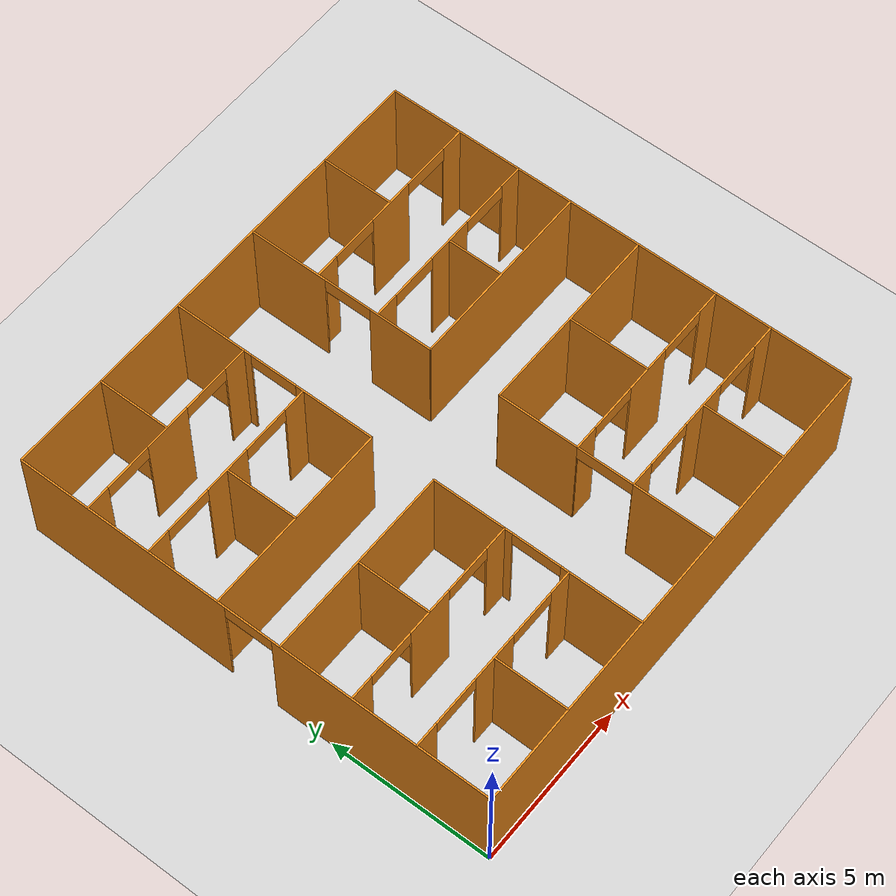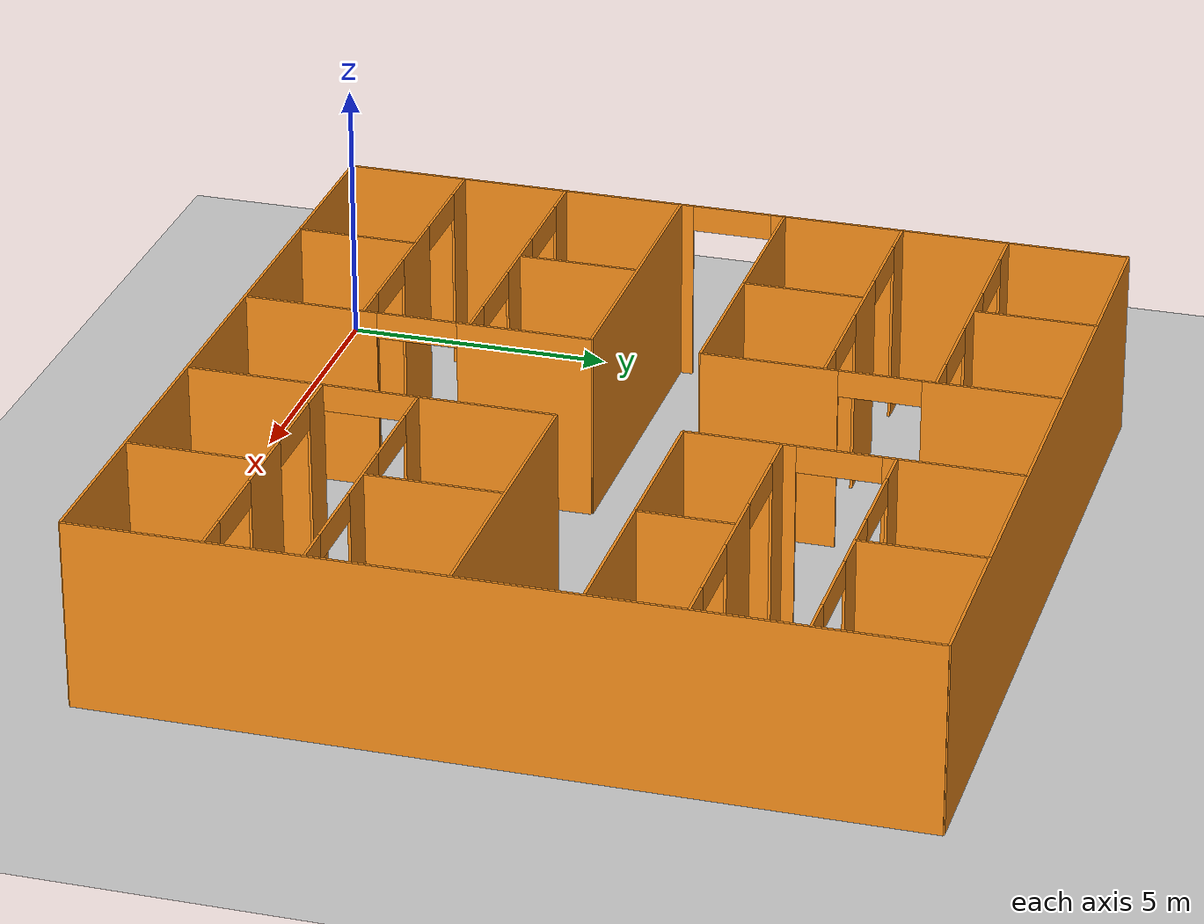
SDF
<sdf version="1.6">
 <world name="default">
  <model name="box_70">
   <pose>1.5 10.75 3.25 0 0 -0.0</pose>
   <link name="link">
    <inertial>
     <mass>1</mass>
     <inertia><ixx>0</ixx><ixy>0</ixy><ixz>0</ixz><iyy>0</iyy><iyz>0</iyz><izz>0</izz></inertia>
    </inertial>
    <collision name="collision"><geometry><box><size>1.5 0.05 0.5</size></box></geometry></collision>
    <visual name="visual">
     <geometry><box><size>1.5 0.05 0.5</size></box></geometry>
     <material>
      <script><name>Gazebo/Orange</name><uri>file://media/materials/scripts/gazebo.material</uri></script>
     </material>
    </visual>
   </link>
   <static>1</static>
  </model>
  <model name="box_69">
   <pose>4.5 10.75 3.25 0 0 -0.0</pose>
   <link name="link">
    <inertial>
     <mass>1</mass>
     <inertia><ixx>0</ixx><ixy>0</ixy><ixz>0</ixz><iyy>0</iyy><iyz>0</iyz><izz>0</izz></inertia>
    </inertial>
    <collision name="collision"><geometry><box><size>1.5 0.05 0.5</size></box></geometry></collision>
    <visual name="visual">
     <geometry><box><size>1.5 0.05 0.5</size></box></geometry>
     <material>
      <script><name>Gazebo/Orange</name><uri>file://media/materials/scripts/gazebo.material</uri></script>
     </material>
    </visual>
   </link>
   <static>1</static>
  </model>
  <model name="box_68">
   <pose>10.5 10.75 3.25 0 0 -3.141592653589793</pose>
   <link name="link">
    <inertial>
     <mass>1</mass>
     <inertia><ixx>0</ixx><ixy>0</ixy><ixz>0</ixz><iyy>0</iyy><iyz>0</iyz><izz>0</izz></inertia>
    </inertial>
    <collision name="collision"><geometry><box><size>1.5 0.05 0.5</size></box></geometry></collision>
    <visual name="visual">
     <geometry><box><size>1.5 0.05 0.5</size></box></geometry>
     <material>
      <script><name>Gazebo/Orange</name><uri>file://media/materials/scripts/gazebo.material</uri></script>
     </material>
    </visual>
   </link>
   <static>1</static>
  </model>
  <model name="box_67">
   <pose>13.5 10.75 3.25 0 0 -3.141592653589793</pose>
   <link name="link">
    <inertial>
     <mass>1</mass>
     <inertia><ixx>0</ixx><ixy>0</ixy><ixz>0</ixz><iyy>0</iyy><iyz>0</iyz><izz>0</izz></inertia>
    </inertial>
    <collision name="collision"><geometry><box><size>1.5 0.05 0.5</size></box></geometry></collision>
    <visual name="visual">
     <geometry><box><size>1.5 0.05 0.5</size></box></geometry>
     <material>
      <script><name>Gazebo/Orange</name><uri>file://media/materials/scripts/gazebo.material</uri></script>
     </material>
    </visual>
   </link>
   <static>1</static>
  </model>
  <model name="box_66">
   <pose>13.5 12.75 3.25 0 0 -3.141592653589793</pose>
   <link name="link">
    <inertial>
     <mass>1</mass>
     <inertia><ixx>0</ixx><ixy>0</ixy><ixz>0</ixz><iyy>0</iyy><iyz>0</iyz><izz>0</izz></inertia>
    </inertial>
    <collision name="collision"><geometry><box><size>1.5 0.05 0.5</size></box></geometry></collision>
    <visual name="visual">
     <geometry><box><size>1.5 0.05 0.5</size></box></geometry>
     <material>
      <script><name>Gazebo/Orange</name><uri>file://media/materials/scripts/gazebo.material</uri></script>
     </material>
    </visual>
   </link>
   <static>1</static>
  </model>
  <model name="box_65">
   <pose>10.5 12.75 3.25 0 0 -3.141592653589793</pose>
   <link name="link">
    <inertial>
     <mass>1</mass>
     <inertia><ixx>0</ixx><ixy>0</ixy><ixz>0</ixz><iyy>0</iyy><iyz>0</iyz><izz>0</izz></inertia>
    </inertial>
    <collision name="collision"><geometry><box><size>1.5 0.05 0.5</size></box></geometry></collision>
    <visual name="visual">
     <geometry><box><size>1.5 0.05 0.5</size></box></geometry>
     <material>
      <script><name>Gazebo/Orange</name><uri>file://media/materials/scripts/gazebo.material</uri></script>
     </material>
    </visual>
   </link>
   <static>1</static>
  </model>
  <model name="box_64">
   <pose>9.0 11.75 3.25 0 0 1.5707963267948966</pose>
   <link name="link">
    <inertial>
     <mass>1</mass>
     <inertia><ixx>0</ixx><ixy>0</ixy><ixz>0</ixz><iyy>0</iyy><iyz>0</iyz><izz>0</izz></inertia>
    </inertial>
    <collision name="collision"><geometry><box><size>1.5 0.05 0.5</size></box></geometry></collision>
    <visual name="visual">
     <geometry><box><size>1.5 0.05 0.5</size></box></geometry>
     <material>
      <script><name>Gazebo/Orange</name><uri>file://media/materials/scripts/gazebo.material</uri></script>
     </material>
    </visual>
   </link>
   <static>1</static>
  </model>
  <model name="box_63">
   <pose>6.0 11.75 3.25 0 0 -1.5707963267948966</pose>
   <link name="link">
    <inertial>
     <mass>1</mass>
     <inertia><ixx>0</ixx><ixy>0</ixy><ixz>0</ixz><iyy>0</iyy><iyz>0</iyz><izz>0</izz></inertia>
    </inertial>
    <collision name="collision"><geometry><box><size>1.5 0.05 0.5</size></box></geometry></collision>
    <visual name="visual">
     <geometry><box><size>1.5 0.05 0.5</size></box></geometry>
     <material>
      <script><name>Gazebo/Orange</name><uri>file://media/materials/scripts/gazebo.material</uri></script>
     </material>
    </visual>
   </link>
   <static>1</static>
  </model>
  <model name="box_62">
   <pose>4.5 12.75 3.25 0 0 -3.141592653589793</pose>
   <link name="link">
    <inertial>
     <mass>1</mass>
     <inertia><ixx>0</ixx><ixy>0</ixy><ixz>0</ixz><iyy>0</iyy><iyz>0</iyz><izz>0</izz></inertia>
    </inertial>
    <collision name="collision"><geometry><box><size>1.5 0.05 0.5</size></box></geometry></collision>
    <visual name="visual">
     <geometry><box><size>1.5 0.05 0.5</size></box></geometry>
     <material>
      <script><name>Gazebo/Orange</name><uri>file://media/materials/scripts/gazebo.material</uri></script>
     </material>
    </visual>
   </link>
   <static>1</static>
  </model>
  <model name="box_61">
   <pose>1.5 12.75 3.25 0 0 -3.141592653589793</pose>
   <link name="link">
    <inertial>
     <mass>1</mass>
     <inertia><ixx>0</ixx><ixy>0</ixy><ixz>0</ixz><iyy>0</iyy><iyz>0</iyz><izz>0</izz></inertia>
    </inertial>
    <collision name="collision"><geometry><box><size>1.5 0.05 0.5</size></box></geometry></collision>
    <visual name="visual">
     <geometry><box><size>1.5 0.05 0.5</size></box></geometry>
     <material>
      <script><name>Gazebo/Orange</name><uri>file://media/materials/scripts/gazebo.material</uri></script>
     </material>
    </visual>
   </link>
   <static>1</static>
  </model>
  <model name="box_60">
   <pose>4.5 2.25 3.25 0 0 -3.141592653589793</pose>
   <link name="link">
    <inertial>
     <mass>1</mass>
     <inertia><ixx>0</ixx><ixy>0</ixy><ixz>0</ixz><iyy>0</iyy><iyz>0</iyz><izz>0</izz></inertia>
    </inertial>
    <collision name="collision"><geometry><box><size>1.5 0.05 0.5</size></box></geometry></collision>
    <visual name="visual">
     <geometry><box><size>1.5 0.05 0.5</size></box></geometry>
     <material>
      <script><name>Gazebo/Orange</name><uri>file://media/materials/scripts/gazebo.material</uri></script>
     </material>
    </visual>
   </link>
   <static>1</static>
  </model>
  <model name="box_59">
   <pose>1.5 2.25 3.25 0 0 -3.141592653589793</pose>
   <link name="link">
    <inertial>
     <mass>1</mass>
     <inertia><ixx>0</ixx><ixy>0</ixy><ixz>0</ixz><iyy>0</iyy><iyz>0</iyz><izz>0</izz></inertia>
    </inertial>
    <collision name="collision"><geometry><box><size>1.5 0.05 0.5</size></box></geometry></collision>
    <visual name="visual">
     <geometry><box><size>1.5 0.05 0.5</size></box></geometry>
     <material>
      <script><name>Gazebo/Orange</name><uri>file://media/materials/scripts/gazebo.material</uri></script>
     </material>
    </visual>
   </link>
   <static>1</static>
  </model>
  <model name="box_58">
   <pose>0.0 7.5 3.25 0 0 -1.5707963267948966</pose>
   <link name="link">
    <inertial>
     <mass>1</mass>
     <inertia><ixx>0</ixx><ixy>0</ixy><ixz>0</ixz><iyy>0</iyy><iyz>0</iyz><izz>0</izz></inertia>
    </inertial>
    <collision name="collision"><geometry><box><size>1.5 0.05 0.5</size></box></geometry></collision>
    <visual name="visual">
     <geometry><box><size>1.5 0.05 0.5</size></box></geometry>
     <material>
      <script><name>Gazebo/Orange</name><uri>file://media/materials/scripts/gazebo.material</uri></script>
     </material>
    </visual>
   </link>
   <static>1</static>
  </model>
  <model name="box_57">
   <pose>6.0 3.25 3.25 0 0 -1.5707963267948966</pose>
   <link name="link">
    <inertial>
     <mass>1</mass>
     <inertia><ixx>0</ixx><ixy>0</ixy><ixz>0</ixz><iyy>0</iyy><iyz>0</iyz><izz>0</izz></inertia>
    </inertial>
    <collision name="collision"><geometry><box><size>1.5 0.05 0.5</size></box></geometry></collision>
    <visual name="visual">
     <geometry><box><size>1.5 0.05 0.5</size></box></geometry>
     <material>
      <script><name>Gazebo/Orange</name><uri>file://media/materials/scripts/gazebo.material</uri></script>
     </material>
    </visual>
   </link>
   <static>1</static>
  </model>
  <model name="box_56">
   <pose>10.5 4.25 3.25 0 0 -3.141592653589793</pose>
   <link name="link">
    <inertial>
     <mass>1</mass>
     <inertia><ixx>0</ixx><ixy>0</ixy><ixz>0</ixz><iyy>0</iyy><iyz>0</iyz><izz>0</izz></inertia>
    </inertial>
    <collision name="collision"><geometry><box><size>1.5 0.05 0.5</size></box></geometry></collision>
    <visual name="visual">
     <geometry><box><size>1.5 0.05 0.5</size></box></geometry>
     <material>
      <script><name>Gazebo/Orange</name><uri>file://media/materials/scripts/gazebo.material</uri></script>
     </material>
    </visual>
   </link>
   <static>1</static>
  </model>
  <model name="box_55">
   <pose>10.5 2.5 3.25 0 0 -3.141592653589793</pose>
   <link name="link">
    <inertial>
     <mass>1</mass>
     <inertia><ixx>0</ixx><ixy>0</ixy><ixz>0</ixz><iyy>0</iyy><iyz>0</iyz><izz>0</izz></inertia>
    </inertial>
    <collision name="collision"><geometry><box><size>1.5 0.05 0.5</size></box></geometry></collision>
    <visual name="visual">
     <geometry><box><size>1.5 0.05 0.5</size></box></geometry>
     <material>
      <script><name>Gazebo/Orange</name><uri>file://media/materials/scripts/gazebo.material</uri></script>
     </material>
    </visual>
   </link>
   <static>1</static>
  </model>
  <model name="box_54">
   <pose>1.5 4.25 3.25 0 0 -0.0</pose>
   <link name="link">
    <inertial>
     <mass>1</mass>
     <inertia><ixx>0</ixx><ixy>0</ixy><ixz>0</ixz><iyy>0</iyy><iyz>0</iyz><izz>0</izz></inertia>
    </inertial>
    <collision name="collision"><geometry><box><size>1.5 0.05 0.5</size></box></geometry></collision>
    <visual name="visual">
     <geometry><box><size>1.5 0.05 0.5</size></box></geometry>
     <material>
      <script><name>Gazebo/Orange</name><uri>file://media/materials/scripts/gazebo.material</uri></script>
     </material>
    </visual>
   </link>
   <static>1</static>
  </model>
  <model name="box_53">
   <pose>4.5 4.25 3.25 0 0 -0.0</pose>
   <link name="link">
    <inertial>
     <mass>1</mass>
     <inertia><ixx>0</ixx><ixy>0</ixy><ixz>0</ixz><iyy>0</iyy><iyz>0</iyz><izz>0</izz></inertia>
    </inertial>
    <collision name="collision"><geometry><box><size>1.5 0.05 0.5</size></box></geometry></collision>
    <visual name="visual">
     <geometry><box><size>1.5 0.05 0.5</size></box></geometry>
     <material>
      <script><name>Gazebo/Orange</name><uri>file://media/materials/scripts/gazebo.material</uri></script>
     </material>
    </visual>
   </link>
   <static>1</static>
  </model>
  <model name="box_52">
   <pose>9.0 3.375 3.25 0 0 1.5707963267948966</pose>
   <link name="link">
    <inertial>
     <mass>1</mass>
     <inertia><ixx>0</ixx><ixy>0</ixy><ixz>0</ixz><iyy>0</iyy><iyz>0</iyz><izz>0</izz></inertia>
    </inertial>
    <collision name="collision"><geometry><box><size>1.75 0.05 0.5</size></box></geometry></collision>
    <visual name="visual">
     <geometry><box><size>1.75 0.05 0.5</size></box></geometry>
     <material>
      <script><name>Gazebo/Orange</name><uri>file://media/materials/scripts/gazebo.material</uri></script>
     </material>
    </visual>
   </link>
   <static>1</static>
  </model>
  <model name="box_51">
   <pose>13.5 2.5 3.25 0 0 -3.141592653589793</pose>
   <link name="link">
    <inertial>
     <mass>1</mass>
     <inertia><ixx>0</ixx><ixy>0</ixy><ixz>0</ixz><iyy>0</iyy><iyz>0</iyz><izz>0</izz></inertia>
    </inertial>
    <collision name="collision"><geometry><box><size>1.5 0.05 0.5</size></box></geometry></collision>
    <visual name="visual">
     <geometry><box><size>1.5 0.05 0.5</size></box></geometry>
     <material>
      <script><name>Gazebo/Orange</name><uri>file://media/materials/scripts/gazebo.material</uri></script>
     </material>
    </visual>
   </link>
   <static>1</static>
  </model>
  <model name="box_50">
   <pose>13.5 4.25 3.25 0 0 -3.141592653589793</pose>
   <link name="link">
    <inertial>
     <mass>1</mass>
     <inertia><ixx>0</ixx><ixy>0</ixy><ixz>0</ixz><iyy>0</iyy><iyz>0</iyz><izz>0</izz></inertia>
    </inertial>
    <collision name="collision"><geometry><box><size>1.5 0.05 0.5</size></box></geometry></collision>
    <visual name="visual">
     <geometry><box><size>1.5 0.05 0.5</size></box></geometry>
     <material>
      <script><name>Gazebo/Orange</name><uri>file://media/materials/scripts/gazebo.material</uri></script>
     </material>
    </visual>
   </link>
   <static>1</static>
  </model>
  <model name="box_49">
   <pose>9.0 13.75 1.75 0 0 -1.5707963267948966</pose>
   <link name="link">
    <inertial>
     <mass>1</mass>
     <inertia><ixx>0</ixx><ixy>0</ixy><ixz>0</ixz><iyy>0</iyy><iyz>0</iyz><izz>0</izz></inertia>
    </inertial>
    <collision name="collision"><geometry><box><size>2.5 0.05 3.5</size></box></geometry></collision>
    <visual name="visual">
     <geometry><box><size>2.5 0.05 3.5</size></box></geometry>
     <material>
      <script><name>Gazebo/Orange</name><uri>file://media/materials/scripts/gazebo.material</uri></script>
     </material>
    </visual>
   </link>
   <static>1</static>
  </model>
  <model name="box_48">
   <pose>9.0 10.0 1.75 0 0 -1.5707963267948966</pose>
   <link name="link">
    <inertial>
     <mass>1</mass>
     <inertia><ixx>0</ixx><ixy>0</ixy><ixz>0</ixz><iyy>0</iyy><iyz>0</iyz><izz>0</izz></inertia>
    </inertial>
    <collision name="collision"><geometry><box><size>2.0 0.05 3.5</size></box></geometry></collision>
    <visual name="visual">
     <geometry><box><size>2.0 0.05 3.5</size></box></geometry>
     <material>
      <script><name>Gazebo/Orange</name><uri>file://media/materials/scripts/gazebo.material</uri></script>
     </material>
    </visual>
   </link>
   <static>1</static>
  </model>
  <model name="box_47">
   <pose>12.0 4.25 1.75 0 0 -3.141592653589793</pose>
   <link name="link">
    <inertial>
     <mass>1</mass>
     <inertia><ixx>0</ixx><ixy>0</ixy><ixz>0</ixz><iyy>0</iyy><iyz>0</iyz><izz>0</izz></inertia>
    </inertial>
    <collision name="collision"><geometry><box><size>1.5 0.05 3.5</size></box></geometry></collision>
    <visual name="visual">
     <geometry><box><size>1.5 0.05 3.5</size></box></geometry>
     <material>
      <script><name>Gazebo/Orange</name><uri>file://media/materials/scripts/gazebo.material</uri></script>
     </material>
    </visual>
   </link>
   <static>1</static>
  </model>
  <model name="box_46">
   <pose>12.0 10.75 1.75 0 0 -3.141592653589793</pose>
   <link name="link">
    <inertial>
     <mass>1</mass>
     <inertia><ixx>0</ixx><ixy>0</ixy><ixz>0</ixz><iyy>0</iyy><iyz>0</iyz><izz>0</izz></inertia>
    </inertial>
    <collision name="collision"><geometry><box><size>1.5 0.05 3.5</size></box></geometry></collision>
    <visual name="visual">
     <geometry><box><size>1.5 0.05 3.5</size></box></geometry>
     <material>
      <script><name>Gazebo/Orange</name><uri>file://media/materials/scripts/gazebo.material</uri></script>
     </material>
    </visual>
   </link>
   <static>1</static>
  </model>
  <model name="box_45">
   <pose>5.625 10.75 1.75 0 0 -3.141592653589793</pose>
   <link name="link">
    <inertial>
     <mass>1</mass>
     <inertia><ixx>0</ixx><ixy>0</ixy><ixz>0</ixz><iyy>0</iyy><iyz>0</iyz><izz>0</izz></inertia>
    </inertial>
    <collision name="collision"><geometry><box><size>0.75 0.05 3.5</size></box></geometry></collision>
    <visual name="visual">
     <geometry><box><size>0.75 0.05 3.5</size></box></geometry>
     <material>
      <script><name>Gazebo/Orange</name><uri>file://media/materials/scripts/gazebo.material</uri></script>
     </material>
    </visual>
   </link>
   <static>1</static>
  </model>
  <model name="box_44">
   <pose>3.0 10.75 1.75 0 0 -3.141592653589793</pose>
   <link name="link">
    <inertial>
     <mass>1</mass>
     <inertia><ixx>0</ixx><ixy>0</ixy><ixz>0</ixz><iyy>0</iyy><iyz>0</iyz><izz>0</izz></inertia>
    </inertial>
    <collision name="collision"><geometry><box><size>1.5 0.05 3.5</size></box></geometry></collision>
    <visual name="visual">
     <geometry><box><size>1.5 0.05 3.5</size></box></geometry>
     <material>
      <script><name>Gazebo/Orange</name><uri>file://media/materials/scripts/gazebo.material</uri></script>
     </material>
    </visual>
   </link>
   <static>1</static>
  </model>
  <model name="box_43">
   <pose>0.375 10.75 1.75 0 0 -3.141592653589793</pose>
   <link name="link">
    <inertial>
     <mass>1</mass>
     <inertia><ixx>0</ixx><ixy>0</ixy><ixz>0</ixz><iyy>0</iyy><iyz>0</iyz><izz>0</izz></inertia>
    </inertial>
    <collision name="collision"><geometry><box><size>0.75 0.05 3.5</size></box></geometry></collision>
    <visual name="visual">
     <geometry><box><size>0.75 0.05 3.5</size></box></geometry>
     <material>
      <script><name>Gazebo/Orange</name><uri>file://media/materials/scripts/gazebo.material</uri></script>
     </material>
    </visual>
   </link>
   <static>1</static>
  </model>
  <model name="box_42">
   <pose>12.0 9.875 1.75 0 0 1.5707963267948966</pose>
   <link name="link">
    <inertial>
     <mass>1</mass>
     <inertia><ixx>0</ixx><ixy>0</ixy><ixz>0</ixz><iyy>0</iyy><iyz>0</iyz><izz>0</izz></inertia>
    </inertial>
    <collision name="collision"><geometry><box><size>1.75 0.05 3.5</size></box></geometry></collision>
    <visual name="visual">
     <geometry><box><size>1.75 0.05 3.5</size></box></geometry>
     <material>
      <script><name>Gazebo/Orange</name><uri>file://media/materials/scripts/gazebo.material</uri></script>
     </material>
    </visual>
   </link>
   <static>1</static>
  </model>
  <model name="box_41">
   <pose>12.0 13.875 1.75 0 0 -1.5707963267948966</pose>
   <link name="link">
    <inertial>
     <mass>1</mass>
     <inertia><ixx>0</ixx><ixy>0</ixy><ixz>0</ixz><iyy>0</iyy><iyz>0</iyz><izz>0</izz></inertia>
    </inertial>
    <collision name="collision"><geometry><box><size>2.25 0.05 3.5</size></box></geometry></collision>
    <visual name="visual">
     <geometry><box><size>2.25 0.05 3.5</size></box></geometry>
     <material>
      <script><name>Gazebo/Orange</name><uri>file://media/materials/scripts/gazebo.material</uri></script>
     </material>
    </visual>
   </link>
   <static>1</static>
  </model>
  <model name="box_40">
   <pose>9.375 12.75 1.75 0 0 -0.0</pose>
   <link name="link">
    <inertial>
     <mass>1</mass>
     <inertia><ixx>0</ixx><ixy>0</ixy><ixz>0</ixz><iyy>0</iyy><iyz>0</iyz><izz>0</izz></inertia>
    </inertial>
    <collision name="collision"><geometry><box><size>0.75 0.05 3.5</size></box></geometry></collision>
    <visual name="visual">
     <geometry><box><size>0.75 0.05 3.5</size></box></geometry>
     <material>
      <script><name>Gazebo/Orange</name><uri>file://media/materials/scripts/gazebo.material</uri></script>
     </material>
    </visual>
   </link>
   <static>1</static>
  </model>
  <model name="box_39">
   <pose>9.375 10.75 1.75 0 0 -0.0</pose>
   <link name="link">
    <inertial>
     <mass>1</mass>
     <inertia><ixx>0</ixx><ixy>0</ixy><ixz>0</ixz><iyy>0</iyy><iyz>0</iyz><izz>0</izz></inertia>
    </inertial>
    <collision name="collision"><geometry><box><size>0.75 0.05 3.5</size></box></geometry></collision>
    <visual name="visual">
     <geometry><box><size>0.75 0.05 3.5</size></box></geometry>
     <material>
      <script><name>Gazebo/Orange</name><uri>file://media/materials/scripts/gazebo.material</uri></script>
     </material>
    </visual>
   </link>
   <static>1</static>
  </model>
  <model name="box_38">
   <pose>14.625 10.75 1.75 0 0 -3.141592653589793</pose>
   <link name="link">
    <inertial>
     <mass>1</mass>
     <inertia><ixx>0</ixx><ixy>0</ixy><ixz>0</ixz><iyy>0</iyy><iyz>0</iyz><izz>0</izz></inertia>
    </inertial>
    <collision name="collision"><geometry><box><size>0.75 0.05 3.5</size></box></geometry></collision>
    <visual name="visual">
     <geometry><box><size>0.75 0.05 3.5</size></box></geometry>
     <material>
      <script><name>Gazebo/Orange</name><uri>file://media/materials/scripts/gazebo.material</uri></script>
     </material>
    </visual>
   </link>
   <static>1</static>
  </model>
  <model name="box_37">
   <pose>14.625 12.75 1.75 0 0 -3.141592653589793</pose>
   <link name="link">
    <inertial>
     <mass>1</mass>
     <inertia><ixx>0</ixx><ixy>0</ixy><ixz>0</ixz><iyy>0</iyy><iyz>0</iyz><izz>0</izz></inertia>
    </inertial>
    <collision name="collision"><geometry><box><size>0.75 0.05 3.5</size></box></geometry></collision>
    <visual name="visual">
     <geometry><box><size>0.75 0.05 3.5</size></box></geometry>
     <material>
      <script><name>Gazebo/Orange</name><uri>file://media/materials/scripts/gazebo.material</uri></script>
     </material>
    </visual>
   </link>
   <static>1</static>
  </model>
  <model name="box_36">
   <pose>12.0 12.75 1.75 0 0 -3.141592653589793</pose>
   <link name="link">
    <inertial>
     <mass>1</mass>
     <inertia><ixx>0</ixx><ixy>0</ixy><ixz>0</ixz><iyy>0</iyy><iyz>0</iyz><izz>0</izz></inertia>
    </inertial>
    <collision name="collision"><geometry><box><size>1.5 0.05 3.5</size></box></geometry></collision>
    <visual name="visual">
     <geometry><box><size>1.5 0.05 3.5</size></box></geometry>
     <material>
      <script><name>Gazebo/Orange</name><uri>file://media/materials/scripts/gazebo.material</uri></script>
     </material>
    </visual>
   </link>
   <static>1</static>
  </model>
  <model name="box_35">
   <pose>6.0 9.75 1.75 0 0 -1.5707963267948966</pose>
   <link name="link">
    <inertial>
     <mass>1</mass>
     <inertia><ixx>0</ixx><ixy>0</ixy><ixz>0</ixz><iyy>0</iyy><iyz>0</iyz><izz>0</izz></inertia>
    </inertial>
    <collision name="collision"><geometry><box><size>2.5 0.05 3.5</size></box></geometry></collision>
    <visual name="visual">
     <geometry><box><size>2.5 0.05 3.5</size></box></geometry>
     <material>
      <script><name>Gazebo/Orange</name><uri>file://media/materials/scripts/gazebo.material</uri></script>
     </material>
    </visual>
   </link>
   <static>1</static>
  </model>
  <model name="box_34">
   <pose>6.0 13.75 1.75 0 0 -1.5707963267948966</pose>
   <link name="link">
    <inertial>
     <mass>1</mass>
     <inertia><ixx>0</ixx><ixy>0</ixy><ixz>0</ixz><iyy>0</iyy><iyz>0</iyz><izz>0</izz></inertia>
    </inertial>
    <collision name="collision"><geometry><box><size>2.5 0.05 3.5</size></box></geometry></collision>
    <visual name="visual">
     <geometry><box><size>2.5 0.05 3.5</size></box></geometry>
     <material>
      <script><name>Gazebo/Orange</name><uri>file://media/materials/scripts/gazebo.material</uri></script>
     </material>
    </visual>
   </link>
   <static>1</static>
  </model>
  <model name="box_33">
   <pose>0.375 12.75 1.75 0 0 -0.0</pose>
   <link name="link">
    <inertial>
     <mass>1</mass>
     <inertia><ixx>0</ixx><ixy>0</ixy><ixz>0</ixz><iyy>0</iyy><iyz>0</iyz><izz>0</izz></inertia>
    </inertial>
    <collision name="collision"><geometry><box><size>0.75 0.05 3.5</size></box></geometry></collision>
    <visual name="visual">
     <geometry><box><size>0.75 0.05 3.5</size></box></geometry>
     <material>
      <script><name>Gazebo/Orange</name><uri>file://media/materials/scripts/gazebo.material</uri></script>
     </material>
    </visual>
   </link>
   <static>1</static>
  </model>
  <model name="box_32">
   <pose>3.0 12.75 1.75 0 0 -0.0</pose>
   <link name="link">
    <inertial>
     <mass>1</mass>
     <inertia><ixx>0</ixx><ixy>0</ixy><ixz>0</ixz><iyy>0</iyy><iyz>0</iyz><izz>0</izz></inertia>
    </inertial>
    <collision name="collision"><geometry><box><size>1.5 0.05 3.5</size></box></geometry></collision>
    <visual name="visual">
     <geometry><box><size>1.5 0.05 3.5</size></box></geometry>
     <material>
      <script><name>Gazebo/Orange</name><uri>file://media/materials/scripts/gazebo.material</uri></script>
     </material>
    </visual>
   </link>
   <static>1</static>
  </model>
  <model name="box_31">
   <pose>5.625 12.75 1.75 0 0 -3.141592653589793</pose>
   <link name="link">
    <inertial>
     <mass>1</mass>
     <inertia><ixx>0</ixx><ixy>0</ixy><ixz>0</ixz><iyy>0</iyy><iyz>0</iyz><izz>0</izz></inertia>
    </inertial>
    <collision name="collision"><geometry><box><size>0.75 0.05 3.5</size></box></geometry></collision>
    <visual name="visual">
     <geometry><box><size>0.75 0.05 3.5</size></box></geometry>
     <material>
      <script><name>Gazebo/Orange</name><uri>file://media/materials/scripts/gazebo.material</uri></script>
     </material>
    </visual>
   </link>
   <static>1</static>
  </model>
  <model name="box_30">
   <pose>3.0 13.875 1.75 0 0 -1.5707963267948966</pose>
   <link name="link">
    <inertial>
     <mass>1</mass>
     <inertia><ixx>0</ixx><ixy>0</ixy><ixz>0</ixz><iyy>0</iyy><iyz>0</iyz><izz>0</izz></inertia>
    </inertial>
    <collision name="collision"><geometry><box><size>2.25 0.05 3.5</size></box></geometry></collision>
    <visual name="visual">
     <geometry><box><size>2.25 0.05 3.5</size></box></geometry>
     <material>
      <script><name>Gazebo/Orange</name><uri>file://media/materials/scripts/gazebo.material</uri></script>
     </material>
    </visual>
   </link>
   <static>1</static>
  </model>
  <model name="box_29">
   <pose>3.0 9.625 1.75 0 0 1.5707963267948966</pose>
   <link name="link">
    <inertial>
     <mass>1</mass>
     <inertia><ixx>0</ixx><ixy>0</ixy><ixz>0</ixz><iyy>0</iyy><iyz>0</iyz><izz>0</izz></inertia>
    </inertial>
    <collision name="collision"><geometry><box><size>2.25 0.05 3.5</size></box></geometry></collision>
    <visual name="visual">
     <geometry><box><size>2.25 0.05 3.5</size></box></geometry>
     <material>
      <script><name>Gazebo/Orange</name><uri>file://media/materials/scripts/gazebo.material</uri></script>
     </material>
    </visual>
   </link>
   <static>1</static>
  </model>
  <model name="box_28">
   <pose>3.0 8.5 1.75 0 0 -3.141592653589793</pose>
   <link name="link">
    <inertial>
     <mass>1</mass>
     <inertia><ixx>0</ixx><ixy>0</ixy><ixz>0</ixz><iyy>0</iyy><iyz>0</iyz><izz>0</izz></inertia>
    </inertial>
    <collision name="collision"><geometry><box><size>6.0 0.05 3.5</size></box></geometry></collision>
    <visual name="visual">
     <geometry><box><size>6.0 0.05 3.5</size></box></geometry>
     <material>
      <script><name>Gazebo/Orange</name><uri>file://media/materials/scripts/gazebo.material</uri></script>
     </material>
    </visual>
   </link>
   <static>1</static>
  </model>
  <model name="box_27">
   <pose>3.0 6.5 1.75 0 0 -0.0</pose>
   <link name="link">
    <inertial>
     <mass>1</mass>
     <inertia><ixx>0</ixx><ixy>0</ixy><ixz>0</ixz><iyy>0</iyy><iyz>0</iyz><izz>0</izz></inertia>
    </inertial>
    <collision name="collision"><geometry><box><size>6.0 0.05 3.5</size></box></geometry></collision>
    <visual name="visual">
     <geometry><box><size>6.0 0.05 3.5</size></box></geometry>
     <material>
      <script><name>Gazebo/Orange</name><uri>file://media/materials/scripts/gazebo.material</uri></script>
     </material>
    </visual>
   </link>
   <static>1</static>
  </model>
  <model name="box_26">
   <pose>6.0 5.25 1.75 0 0 -1.5707963267948966</pose>
   <link name="link">
    <inertial>
     <mass>1</mass>
     <inertia><ixx>0</ixx><ixy>0</ixy><ixz>0</ixz><iyy>0</iyy><iyz>0</iyz><izz>0</izz></inertia>
    </inertial>
    <collision name="collision"><geometry><box><size>2.5 0.05 3.5</size></box></geometry></collision>
    <visual name="visual">
     <geometry><box><size>2.5 0.05 3.5</size></box></geometry>
     <material>
      <script><name>Gazebo/Orange</name><uri>file://media/materials/scripts/gazebo.material</uri></script>
     </material>
    </visual>
   </link>
   <static>1</static>
  </model>
  <model name="box_25">
   <pose>5.625 4.25 1.75 0 0 -3.141592653589793</pose>
   <link name="link">
    <inertial>
     <mass>1</mass>
     <inertia><ixx>0</ixx><ixy>0</ixy><ixz>0</ixz><iyy>0</iyy><iyz>0</iyz><izz>0</izz></inertia>
    </inertial>
    <collision name="collision"><geometry><box><size>0.75 0.05 3.5</size></box></geometry></collision>
    <visual name="visual">
     <geometry><box><size>0.75 0.05 3.5</size></box></geometry>
     <material>
      <script><name>Gazebo/Orange</name><uri>file://media/materials/scripts/gazebo.material</uri></script>
     </material>
    </visual>
   </link>
   <static>1</static>
  </model>
  <model name="box_24">
   <pose>3.0 5.375 1.75 0 0 -1.5707963267948966</pose>
   <link name="link">
    <inertial>
     <mass>1</mass>
     <inertia><ixx>0</ixx><ixy>0</ixy><ixz>0</ixz><iyy>0</iyy><iyz>0</iyz><izz>0</izz></inertia>
    </inertial>
    <collision name="collision"><geometry><box><size>2.25 0.05 3.5</size></box></geometry></collision>
    <visual name="visual">
     <geometry><box><size>2.25 0.05 3.5</size></box></geometry>
     <material>
      <script><name>Gazebo/Orange</name><uri>file://media/materials/scripts/gazebo.material</uri></script>
     </material>
    </visual>
   </link>
   <static>1</static>
  </model>
  <model name="box_23">
   <pose>0.375 2.25 1.75 0 0 -0.0</pose>
   <link name="link">
    <inertial>
     <mass>1</mass>
     <inertia><ixx>0</ixx><ixy>0</ixy><ixz>0</ixz><iyy>0</iyy><iyz>0</iyz><izz>0</izz></inertia>
    </inertial>
    <collision name="collision"><geometry><box><size>0.75 0.05 3.5</size></box></geometry></collision>
    <visual name="visual">
     <geometry><box><size>0.75 0.05 3.5</size></box></geometry>
     <material>
      <script><name>Gazebo/Orange</name><uri>file://media/materials/scripts/gazebo.material</uri></script>
     </material>
    </visual>
   </link>
   <static>1</static>
  </model>
  <model name="box_22">
   <pose>3.0 2.25 1.75 0 0 -3.141592653589793</pose>
   <link name="link">
    <inertial>
     <mass>1</mass>
     <inertia><ixx>0</ixx><ixy>0</ixy><ixz>0</ixz><iyy>0</iyy><iyz>0</iyz><izz>0</izz></inertia>
    </inertial>
    <collision name="collision"><geometry><box><size>1.5 0.05 3.5</size></box></geometry></collision>
    <visual name="visual">
     <geometry><box><size>1.5 0.05 3.5</size></box></geometry>
     <material>
      <script><name>Gazebo/Orange</name><uri>file://media/materials/scripts/gazebo.material</uri></script>
     </material>
    </visual>
   </link>
   <static>1</static>
  </model>
  <model name="box_21">
   <pose>3.0 1.125 1.75 0 0 1.5707963267948966</pose>
   <link name="link">
    <inertial>
     <mass>1</mass>
     <inertia><ixx>0</ixx><ixy>0</ixy><ixz>0</ixz><iyy>0</iyy><iyz>0</iyz><izz>0</izz></inertia>
    </inertial>
    <collision name="collision"><geometry><box><size>2.25 0.05 3.5</size></box></geometry></collision>
    <visual name="visual">
     <geometry><box><size>2.25 0.05 3.5</size></box></geometry>
     <material>
      <script><name>Gazebo/Orange</name><uri>file://media/materials/scripts/gazebo.material</uri></script>
     </material>
    </visual>
   </link>
   <static>1</static>
  </model>
  <model name="box_20">
   <pose>6.0 1.25 1.75 0 0 -1.5707963267948966</pose>
   <link name="link">
    <inertial>
     <mass>1</mass>
     <inertia><ixx>0</ixx><ixy>0</ixy><ixz>0</ixz><iyy>0</iyy><iyz>0</iyz><izz>0</izz></inertia>
    </inertial>
    <collision name="collision"><geometry><box><size>2.5 0.05 3.5</size></box></geometry></collision>
    <visual name="visual">
     <geometry><box><size>2.5 0.05 3.5</size></box></geometry>
     <material>
      <script><name>Gazebo/Orange</name><uri>file://media/materials/scripts/gazebo.material</uri></script>
     </material>
    </visual>
   </link>
   <static>1</static>
  </model>
  <model name="box_19">
   <pose>5.625 2.25 1.75 0 0 -0.0</pose>
   <link name="link">
    <inertial>
     <mass>1</mass>
     <inertia><ixx>0</ixx><ixy>0</ixy><ixz>0</ixz><iyy>0</iyy><iyz>0</iyz><izz>0</izz></inertia>
    </inertial>
    <collision name="collision"><geometry><box><size>0.75 0.05 3.5</size></box></geometry></collision>
    <visual name="visual">
     <geometry><box><size>0.75 0.05 3.5</size></box></geometry>
     <material>
      <script><name>Gazebo/Orange</name><uri>file://media/materials/scripts/gazebo.material</uri></script>
     </material>
    </visual>
   </link>
   <static>1</static>
  </model>
  <model name="box_18">
   <pose>12.0 1.25 1.75 0 0 1.5707963267948966</pose>
   <link name="link">
    <inertial>
     <mass>1</mass>
     <inertia><ixx>0</ixx><ixy>0</ixy><ixz>0</ixz><iyy>0</iyy><iyz>0</iyz><izz>0</izz></inertia>
    </inertial>
    <collision name="collision"><geometry><box><size>2.5 0.05 3.5</size></box></geometry></collision>
    <visual name="visual">
     <geometry><box><size>2.5 0.05 3.5</size></box></geometry>
     <material>
      <script><name>Gazebo/Orange</name><uri>file://media/materials/scripts/gazebo.material</uri></script>
     </material>
    </visual>
   </link>
   <static>1</static>
  </model>
  <model name="box_17">
   <pose>12.0 2.5 1.75 0 0 -3.141592653589793</pose>
   <link name="link">
    <inertial>
     <mass>1</mass>
     <inertia><ixx>0</ixx><ixy>0</ixy><ixz>0</ixz><iyy>0</iyy><iyz>0</iyz><izz>0</izz></inertia>
    </inertial>
    <collision name="collision"><geometry><box><size>1.5 0.05 3.5</size></box></geometry></collision>
    <visual name="visual">
     <geometry><box><size>1.5 0.05 3.5</size></box></geometry>
     <material>
      <script><name>Gazebo/Orange</name><uri>file://media/materials/scripts/gazebo.material</uri></script>
     </material>
    </visual>
   </link>
   <static>1</static>
  </model>
  <model name="box_16">
   <pose>12.0 5.5 1.75 0 0 1.5707963267948966</pose>
   <link name="link">
    <inertial>
     <mass>1</mass>
     <inertia><ixx>0</ixx><ixy>0</ixy><ixz>0</ixz><iyy>0</iyy><iyz>0</iyz><izz>0</izz></inertia>
    </inertial>
    <collision name="collision"><geometry><box><size>2.5 0.05 3.5</size></box></geometry></collision>
    <visual name="visual">
     <geometry><box><size>2.5 0.05 3.5</size></box></geometry>
     <material>
      <script><name>Gazebo/Orange</name><uri>file://media/materials/scripts/gazebo.material</uri></script>
     </material>
    </visual>
   </link>
   <static>1</static>
  </model>
  <model name="box_15">
   <pose>14.625 2.5 1.75 0 0 -3.141592653589793</pose>
   <link name="link">
    <inertial>
     <mass>1</mass>
     <inertia><ixx>0</ixx><ixy>0</ixy><ixz>0</ixz><iyy>0</iyy><iyz>0</iyz><izz>0</izz></inertia>
    </inertial>
    <collision name="collision"><geometry><box><size>0.75 0.05 3.5</size></box></geometry></collision>
    <visual name="visual">
     <geometry><box><size>0.75 0.05 3.5</size></box></geometry>
     <material>
      <script><name>Gazebo/Orange</name><uri>file://media/materials/scripts/gazebo.material</uri></script>
     </material>
    </visual>
   </link>
   <static>1</static>
  </model>
  <model name="box_14">
   <pose>9.375 2.5 1.75 0 0 -3.141592653589793</pose>
   <link name="link">
    <inertial>
     <mass>1</mass>
     <inertia><ixx>0</ixx><ixy>0</ixy><ixz>0</ixz><iyy>0</iyy><iyz>0</iyz><izz>0</izz></inertia>
    </inertial>
    <collision name="collision"><geometry><box><size>0.75 0.05 3.5</size></box></geometry></collision>
    <visual name="visual">
     <geometry><box><size>0.75 0.05 3.5</size></box></geometry>
     <material>
      <script><name>Gazebo/Orange</name><uri>file://media/materials/scripts/gazebo.material</uri></script>
     </material>
    </visual>
   </link>
   <static>1</static>
  </model>
  <model name="box_13">
   <pose>9.0 1.25 1.75 0 0 -1.5707963267948966</pose>
   <link name="link">
    <inertial>
     <mass>1</mass>
     <inertia><ixx>0</ixx><ixy>0</ixy><ixz>0</ixz><iyy>0</iyy><iyz>0</iyz><izz>0</izz></inertia>
    </inertial>
    <collision name="collision"><geometry><box><size>2.5 0.05 3.5</size></box></geometry></collision>
    <visual name="visual">
     <geometry><box><size>2.5 0.05 3.5</size></box></geometry>
     <material>
      <script><name>Gazebo/Orange</name><uri>file://media/materials/scripts/gazebo.material</uri></script>
     </material>
    </visual>
   </link>
   <static>1</static>
  </model>
  <model name="box_12">
   <pose>14.625 4.25 1.75 0 0 -3.141592653589793</pose>
   <link name="link">
    <inertial>
     <mass>1</mass>
     <inertia><ixx>0</ixx><ixy>0</ixy><ixz>0</ixz><iyy>0</iyy><iyz>0</iyz><izz>0</izz></inertia>
    </inertial>
    <collision name="collision"><geometry><box><size>0.75 0.05 3.5</size></box></geometry></collision>
    <visual name="visual">
     <geometry><box><size>0.75 0.05 3.5</size></box></geometry>
     <material>
      <script><name>Gazebo/Orange</name><uri>file://media/materials/scripts/gazebo.material</uri></script>
     </material>
    </visual>
   </link>
   <static>1</static>
  </model>
  <model name="box_11">
   <pose>9.375 4.25 1.75 0 0 -3.141592653589793</pose>
   <link name="link">
    <inertial>
     <mass>1</mass>
     <inertia><ixx>0</ixx><ixy>0</ixy><ixz>0</ixz><iyy>0</iyy><iyz>0</iyz><izz>0</izz></inertia>
    </inertial>
    <collision name="collision"><geometry><box><size>0.75 0.05 3.5</size></box></geometry></collision>
    <visual name="visual">
     <geometry><box><size>0.75 0.05 3.5</size></box></geometry>
     <material>
      <script><name>Gazebo/Orange</name><uri>file://media/materials/scripts/gazebo.material</uri></script>
     </material>
    </visual>
   </link>
   <static>1</static>
  </model>
  <model name="box_10">
   <pose>9.0 5.5 1.75 0 0 1.5707963267948966</pose>
   <link name="link">
    <inertial>
     <mass>1</mass>
     <inertia><ixx>0</ixx><ixy>0</ixy><ixz>0</ixz><iyy>0</iyy><iyz>0</iyz><izz>0</izz></inertia>
    </inertial>
    <collision name="collision"><geometry><box><size>2.5 0.05 3.5</size></box></geometry></collision>
    <visual name="visual">
     <geometry><box><size>2.5 0.05 3.5</size></box></geometry>
     <material>
      <script><name>Gazebo/Orange</name><uri>file://media/materials/scripts/gazebo.material</uri></script>
     </material>
    </visual>
   </link>
   <static>1</static>
  </model>
  <model name="box_9">
   <pose>12.0 6.75 1.75 0 0 -3.141592653589793</pose>
   <link name="link">
    <inertial>
     <mass>1</mass>
     <inertia><ixx>0</ixx><ixy>0</ixy><ixz>0</ixz><iyy>0</iyy><iyz>0</iyz><izz>0</izz></inertia>
    </inertial>
    <collision name="collision"><geometry><box><size>6.0 0.05 3.5</size></box></geometry></collision>
    <visual name="visual">
     <geometry><box><size>6.0 0.05 3.5</size></box></geometry>
     <material>
      <script><name>Gazebo/Orange</name><uri>file://media/materials/scripts/gazebo.material</uri></script>
     </material>
    </visual>
   </link>
   <static>1</static>
  </model>
  <model name="box_8">
   <pose>3.0 4.25 1.75 0 0 -3.141592653589793</pose>
   <link name="link">
    <inertial>
     <mass>1</mass>
     <inertia><ixx>0</ixx><ixy>0</ixy><ixz>0</ixz><iyy>0</iyy><iyz>0</iyz><izz>0</izz></inertia>
    </inertial>
    <collision name="collision"><geometry><box><size>1.5 0.05 3.5</size></box></geometry></collision>
    <visual name="visual">
     <geometry><box><size>1.5 0.05 3.5</size></box></geometry>
     <material>
      <script><name>Gazebo/Orange</name><uri>file://media/materials/scripts/gazebo.material</uri></script>
     </material>
    </visual>
   </link>
   <static>1</static>
  </model>
  <model name="box_7">
   <pose>0.375 4.25 1.75 0 0 -3.141592653589793</pose>
   <link name="link">
    <inertial>
     <mass>1</mass>
     <inertia><ixx>0</ixx><ixy>0</ixy><ixz>0</ixz><iyy>0</iyy><iyz>0</iyz><izz>0</izz></inertia>
    </inertial>
    <collision name="collision"><geometry><box><size>0.75 0.05 3.5</size></box></geometry></collision>
    <visual name="visual">
     <geometry><box><size>0.75 0.05 3.5</size></box></geometry>
     <material>
      <script><name>Gazebo/Orange</name><uri>file://media/materials/scripts/gazebo.material</uri></script>
     </material>
    </visual>
   </link>
   <static>1</static>
  </model>
  <model name="box_6">
   <pose>12.0 9.0 1.75 0 0 -3.141592653589793</pose>
   <link name="link">
    <inertial>
     <mass>1</mass>
     <inertia><ixx>0</ixx><ixy>0</ixy><ixz>0</ixz><iyy>0</iyy><iyz>0</iyz><izz>0</izz></inertia>
    </inertial>
    <collision name="collision"><geometry><box><size>6.0 0.05 3.5</size></box></geometry></collision>
    <visual name="visual">
     <geometry><box><size>6.0 0.05 3.5</size></box></geometry>
     <material>
      <script><name>Gazebo/Orange</name><uri>file://media/materials/scripts/gazebo.material</uri></script>
     </material>
    </visual>
   </link>
   <static>1</static>
  </model>
  <model name="box_5">
   <pose>0.0 11.625 1.75 0 0 1.5707963267948966</pose>
   <link name="link">
    <inertial>
     <mass>1</mass>
     <inertia><ixx>0</ixx><ixy>0</ixy><ixz>0</ixz><iyy>0</iyy><iyz>0</iyz><izz>0</izz></inertia>
    </inertial>
    <collision name="collision"><geometry><box><size>6.75 0.05 3.5</size></box></geometry></collision>
    <visual name="visual">
     <geometry><box><size>6.75 0.05 3.5</size></box></geometry>
     <material>
      <script><name>Gazebo/Orange</name><uri>file://media/materials/scripts/gazebo.material</uri></script>
     </material>
    </visual>
   </link>
   <static>1</static>
  </model>
  <model name="box_4">
   <pose>7.5 15.0 1.75 0 0 -0.0</pose>
   <link name="link">
    <inertial>
     <mass>1</mass>
     <inertia><ixx>0</ixx><ixy>0</ixy><ixz>0</ixz><iyy>0</iyy><iyz>0</iyz><izz>0</izz></inertia>
    </inertial>
    <collision name="collision"><geometry><box><size>15.0 0.05 3.5</size></box></geometry></collision>
    <visual name="visual">
     <geometry><box><size>15.0 0.05 3.5</size></box></geometry>
     <material>
      <script><name>Gazebo/Orange</name><uri>file://media/materials/scripts/gazebo.material</uri></script>
     </material>
    </visual>
   </link>
   <static>1</static>
  </model>
  <model name="box_3">
   <pose>15.0 7.5 1.75 0 0 -1.5707963267948966</pose>
   <link name="link">
    <inertial>
     <mass>1</mass>
     <inertia><ixx>0</ixx><ixy>0</ixy><ixz>0</ixz><iyy>0</iyy><iyz>0</iyz><izz>0</izz></inertia>
    </inertial>
    <collision name="collision"><geometry><box><size>15.0 0.05 3.5</size></box></geometry></collision>
    <visual name="visual">
     <geometry><box><size>15.0 0.05 3.5</size></box></geometry>
     <material>
      <script><name>Gazebo/Orange</name><uri>file://media/materials/scripts/gazebo.material</uri></script>
     </material>
    </visual>
   </link>
   <static>1</static>
  </model>
  <model name="box_2">
   <pose>7.5 0.0 1.75 0 0 -3.141592653589793</pose>
   <link name="link">
    <inertial>
     <mass>1</mass>
     <inertia><ixx>0</ixx><ixy>0</ixy><ixz>0</ixz><iyy>0</iyy><iyz>0</iyz><izz>0</izz></inertia>
    </inertial>
    <collision name="collision"><geometry><box><size>15.0 0.05 3.5</size></box></geometry></collision>
    <visual name="visual">
     <geometry><box><size>15.0 0.05 3.5</size></box></geometry>
     <material>
      <script><name>Gazebo/Orange</name><uri>file://media/materials/scripts/gazebo.material</uri></script>
     </material>
    </visual>
   </link>
   <static>1</static>
  </model>
  <model name="box_1">
   <pose>0.0 3.375 1.75 0 0 1.5707963267948966</pose>
   <link name="link">
    <inertial>
     <mass>1</mass>
     <inertia><ixx>0</ixx><ixy>0</ixy><ixz>0</ixz><iyy>0</iyy><iyz>0</iyz><izz>0</izz></inertia>
    </inertial>
    <collision name="collision"><geometry><box><size>6.75 0.05 3.5</size></box></geometry></collision>
    <visual name="visual">
     <geometry><box><size>6.75 0.05 3.5</size></box></geometry>
     <material>
      <script><name>Gazebo/Orange</name><uri>file://media/materials/scripts/gazebo.material</uri></script>
     </material>
    </visual>
   </link>
   <static>1</static>
  </model>
  <model name="ground_plane">
   <static>1</static>
   <link name="link">
    <collision name="collision">
     <geometry><plane><normal>0 0 1</normal><size>100 100</size></plane></geometry>
     <surface>
      <contact><collide_bitmask>65535</collide_bitmask></contact>
      <friction><ode><mu>100</mu><mu2>50</mu2></ode></friction>
     </surface>
    </collision>
    <visual name="visual">
     <cast_shadows>0</cast_shadows>
     <geometry><plane><normal>0 0 1</normal><size>100 100</size></plane></geometry>
     <material>
      <script><uri>file://media/materials/scripts/gazebo.material</uri><name>Gazebo/Grey</name></script>
     </material>
    </visual>
   </link>
  </model>
 </world>
</sdf>
